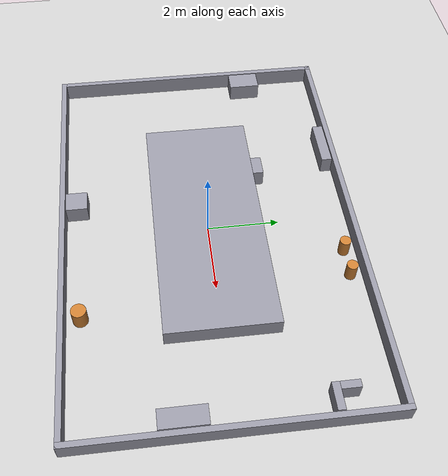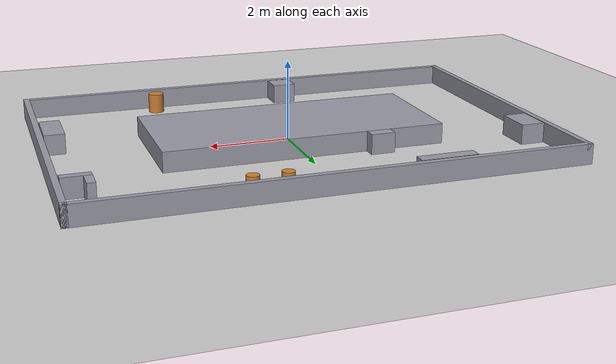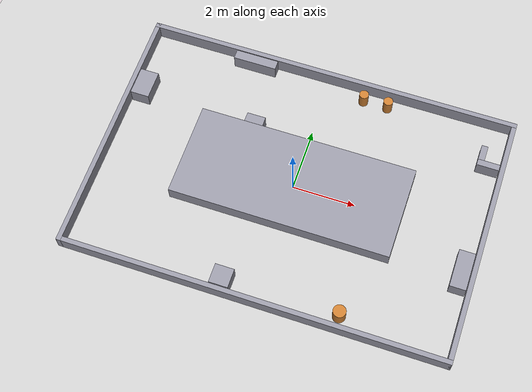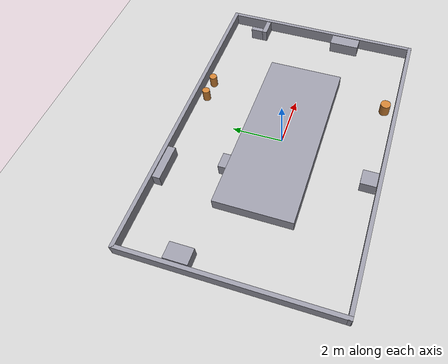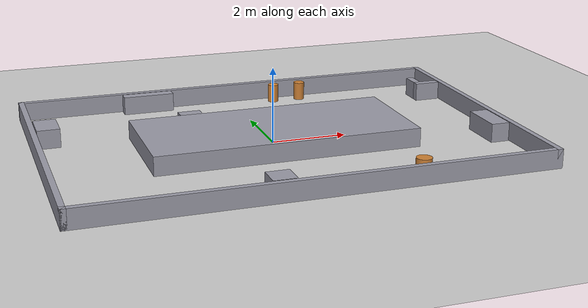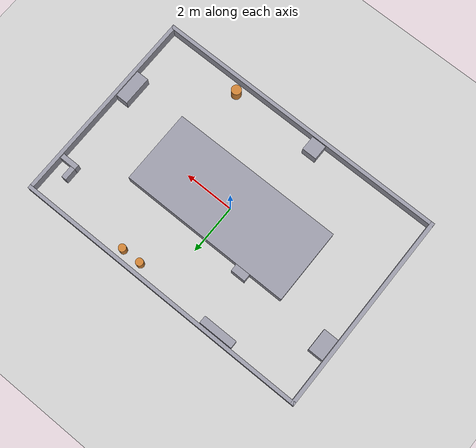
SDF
<?xml version="1.0"?>
<sdf version="1.6">
  <world name="default">
    <include><uri>model://ground_plane</uri></include>
    <include><uri>model://sun</uri></include>
    <scene><shadows>false</shadows></scene>
    <gui fullscreen='0'>
      <camera name='user_camera'>
        <pose frame=''>0 0 16 0 1.5707 0</pose>
        <view_controller>orbit</view_controller>
        <projection_type>perspective</projection_type>
      </camera>
    </gui>
    <physics type="ode">
      <real_time_update_rate>1000.0</real_time_update_rate>
      <max_step_size>0.001</max_step_size>
      <real_time_factor>1</real_time_factor>
      <ode>
        <solver>
          <type>quick</type>
          <iters>150</iters>
          <precon_iters>0</precon_iters>
          <sor>1.400000</sor>
          <use_dynamic_moi_rescaling>1</use_dynamic_moi_rescaling>
        </solver>
        <constraints>
          <cfm>0.00001</cfm>
          <erp>0.2</erp>
          <contact_max_correcting_vel>2000.000000</contact_max_correcting_vel>
          <contact_surface_layer>0.01000</contact_surface_layer>
        </constraints>
      </ode>
    </physics>
    <model name="muro_sud">
      <static>true</static>
      <pose>0 -4 0.25 0 0 0.0</pose>
      <link name="link">
        <collision name="collision"><geometry><box><size>12.15 0.15 0.5</size></box></geometry></collision>
        <visual name="visual"><geometry><box><size>12.15 0.15 0.5</size></box></geometry>
          <material><ambient>0.6 0.6 0.65 1</ambient><diffuse>0.6 0.6 0.65 1</diffuse></material></visual>
      </link>
    </model>
    <model name="muro_nord">
      <static>true</static>
      <pose>0 4 0.25 0 0 0.0</pose>
      <link name="link">
        <collision name="collision"><geometry><box><size>12.15 0.15 0.5</size></box></geometry></collision>
        <visual name="visual"><geometry><box><size>12.15 0.15 0.5</size></box></geometry>
          <material><ambient>0.6 0.6 0.65 1</ambient><diffuse>0.6 0.6 0.65 1</diffuse></material></visual>
      </link>
    </model>
    <model name="muro_ovest">
      <static>true</static>
      <pose>-6 0 0.25 0 0 0.0</pose>
      <link name="link">
        <collision name="collision"><geometry><box><size>0.15 8.15 0.5</size></box></geometry></collision>
        <visual name="visual"><geometry><box><size>0.15 8.15 0.5</size></box></geometry>
          <material><ambient>0.6 0.6 0.65 1</ambient><diffuse>0.6 0.6 0.65 1</diffuse></material></visual>
      </link>
    </model>
    <model name="muro_est">
      <static>true</static>
      <pose>6 0 0.25 0 0 0.0</pose>
      <link name="link">
        <collision name="collision"><geometry><box><size>0.15 8.15 0.5</size></box></geometry></collision>
        <visual name="visual"><geometry><box><size>0.15 8.15 0.5</size></box></geometry>
          <material><ambient>0.6 0.6 0.65 1</ambient><diffuse>0.6 0.6 0.65 1</diffuse></material></visual>
      </link>
    </model>
    <model name="blocco_centrale">
      <static>true</static>
      <pose>0 0 0.25 0 0 0.0</pose>
      <link name="link">
        <collision name="collision"><geometry><box><size>7 3 0.5</size></box></geometry></collision>
        <visual name="visual"><geometry><box><size>7 3 0.5</size></box></geometry>
          <material><ambient>0.6 0.6 0.65 1</ambient><diffuse>0.6 0.6 0.65 1</diffuse></material></visual>
      </link>
    </model>
    <model name="cassa_sud">
      <static>true</static>
      <pose>-1.0 -3.6 0.25 0 0 0.0</pose>
      <link name="link">
        <collision name="collision"><geometry><box><size>0.6 0.6 0.5</size></box></geometry></collision>
        <visual name="visual"><geometry><box><size>0.6 0.6 0.5</size></box></geometry>
          <material><ambient>0.6 0.6 0.65 1</ambient><diffuse>0.6 0.6 0.65 1</diffuse></material></visual>
      </link>
    </model>
    <model name="colonna_sud">
      <static>true</static>
      <pose>2.6 -3.55 0.25 0 0 0</pose>
      <link name="link">
        <collision name="collision"><geometry><cylinder><radius>0.2</radius><length>0.5</length></cylinder></geometry></collision>
        <visual name="visual"><geometry><cylinder><radius>0.2</radius><length>0.5</length></cylinder></geometry>
          <material><ambient>0.8 0.5 0.2 1</ambient><diffuse>0.8 0.5 0.2 1</diffuse></material></visual>
      </link>
    </model>
    <model name="scaffale_est">
      <static>true</static>
      <pose>5.65 -1.2 0.25 0 0 0.0</pose>
      <link name="link">
        <collision name="collision"><geometry><box><size>0.5 1.2 0.5</size></box></geometry></collision>
        <visual name="visual"><geometry><box><size>0.5 1.2 0.5</size></box></geometry>
          <material><ambient>0.6 0.6 0.65 1</ambient><diffuse>0.6 0.6 0.65 1</diffuse></material></visual>
      </link>
    </model>
    <model name="angolo_est_a">
      <static>true</static>
      <pose>5.55 2.4 0.25 0 0 0.0</pose>
      <link name="link">
        <collision name="collision"><geometry><box><size>0.7 0.2 0.5</size></box></geometry></collision>
        <visual name="visual"><geometry><box><size>0.7 0.2 0.5</size></box></geometry>
          <material><ambient>0.6 0.6 0.65 1</ambient><diffuse>0.6 0.6 0.65 1</diffuse></material></visual>
      </link>
    </model>
    <model name="angolo_est_b">
      <static>true</static>
      <pose>5.3 2.75 0.25 0 0 0.0</pose>
      <link name="link">
        <collision name="collision"><geometry><box><size>0.2 0.5 0.5</size></box></geometry></collision>
        <visual name="visual"><geometry><box><size>0.2 0.5 0.5</size></box></geometry>
          <material><ambient>0.6 0.6 0.65 1</ambient><diffuse>0.6 0.6 0.65 1</diffuse></material></visual>
      </link>
    </model>
    <model name="colonna_nord_a">
      <static>true</static>
      <pose>2.0 3.6 0.25 0 0 0</pose>
      <link name="link">
        <collision name="collision"><geometry><cylinder><radius>0.15</radius><length>0.5</length></cylinder></geometry></collision>
        <visual name="visual"><geometry><cylinder><radius>0.15</radius><length>0.5</length></cylinder></geometry>
          <material><ambient>0.8 0.5 0.2 1</ambient><diffuse>0.8 0.5 0.2 1</diffuse></material></visual>
      </link>
    </model>
    <model name="colonna_nord_b">
      <static>true</static>
      <pose>1.2 3.6 0.25 0 0 0</pose>
      <link name="link">
        <collision name="collision"><geometry><cylinder><radius>0.15</radius><length>0.5</length></cylinder></geometry></collision>
        <visual name="visual"><geometry><cylinder><radius>0.15</radius><length>0.5</length></cylinder></geometry>
          <material><ambient>0.8 0.5 0.2 1</ambient><diffuse>0.8 0.5 0.2 1</diffuse></material></visual>
      </link>
    </model>
    <model name="panca_nord">
      <static>true</static>
      <pose>-2.5 3.75 0.25 0 0 0.0</pose>
      <link name="link">
        <collision name="collision"><geometry><box><size>1.4 0.3 0.5</size></box></geometry></collision>
        <visual name="visual"><geometry><box><size>1.4 0.3 0.5</size></box></geometry>
          <material><ambient>0.6 0.6 0.65 1</ambient><diffuse>0.6 0.6 0.65 1</diffuse></material></visual>
      </link>
    </model>
    <model name="armadio_ovest">
      <static>true</static>
      <pose>-5.6 1.8 0.25 0 0 0.0</pose>
      <link name="link">
        <collision name="collision"><geometry><box><size>0.6 0.9 0.5</size></box></geometry></collision>
        <visual name="visual"><geometry><box><size>0.6 0.9 0.5</size></box></geometry>
          <material><ambient>0.6 0.6 0.65 1</ambient><diffuse>0.6 0.6 0.65 1</diffuse></material></visual>
      </link>
    </model>
    <model name="sporgenza_blocco">
      <static>true</static>
      <pose>-1.8 1.65 0.25 0 0 0.0</pose>
      <link name="link">
        <collision name="collision"><geometry><box><size>0.6 0.3 0.5</size></box></geometry></collision>
        <visual name="visual"><geometry><box><size>0.6 0.3 0.5</size></box></geometry>
          <material><ambient>0.6 0.6 0.65 1</ambient><diffuse>0.6 0.6 0.65 1</diffuse></material></visual>
      </link>
    </model>
  </world>
</sdf>
